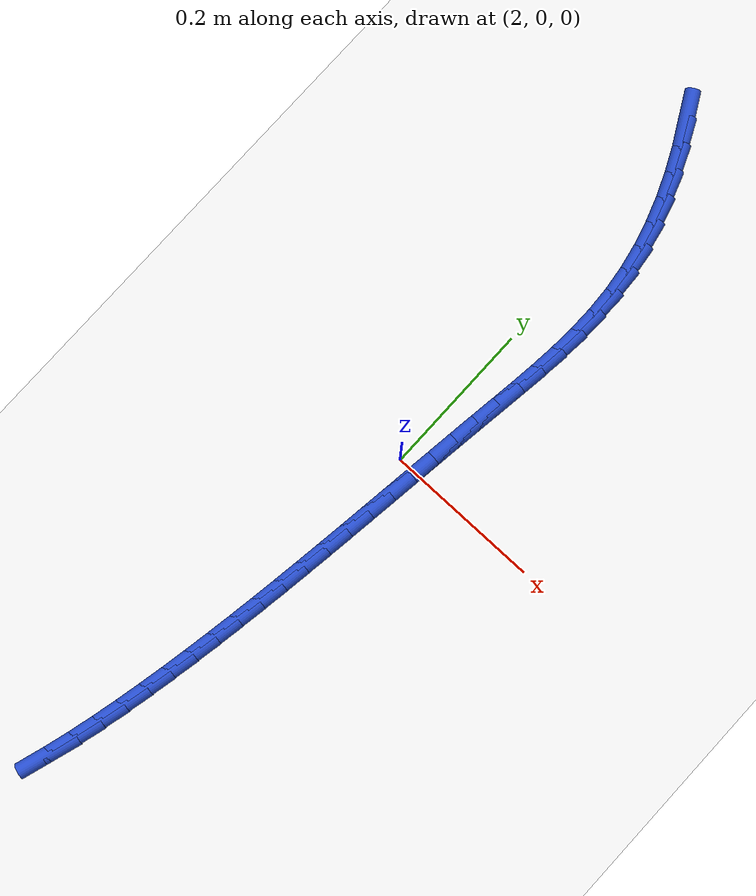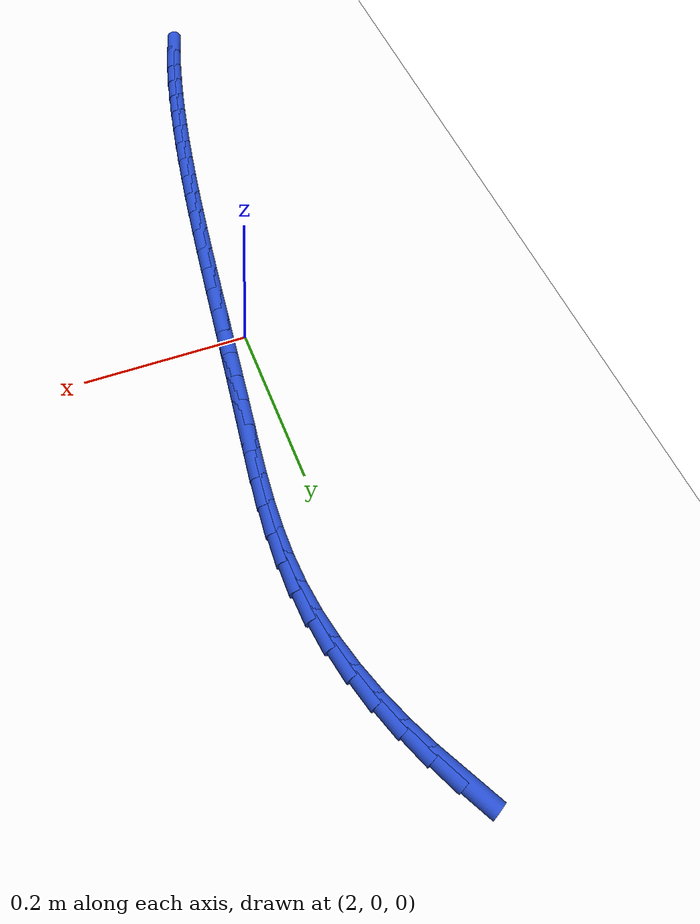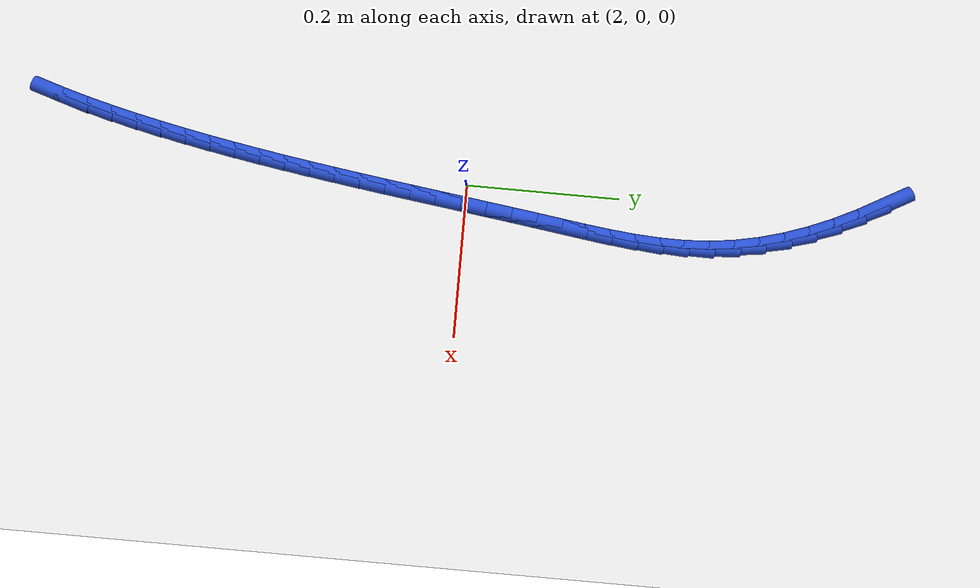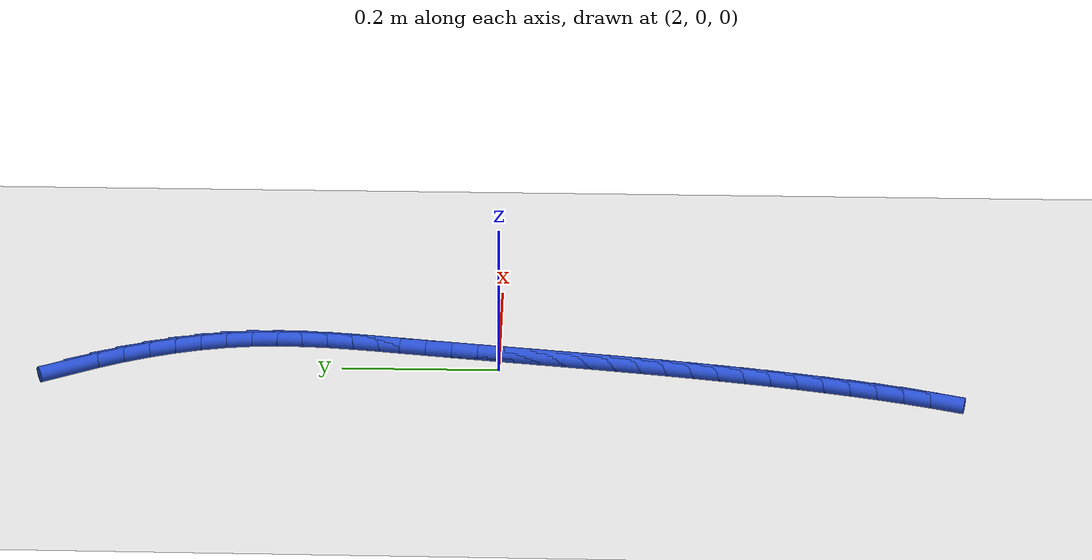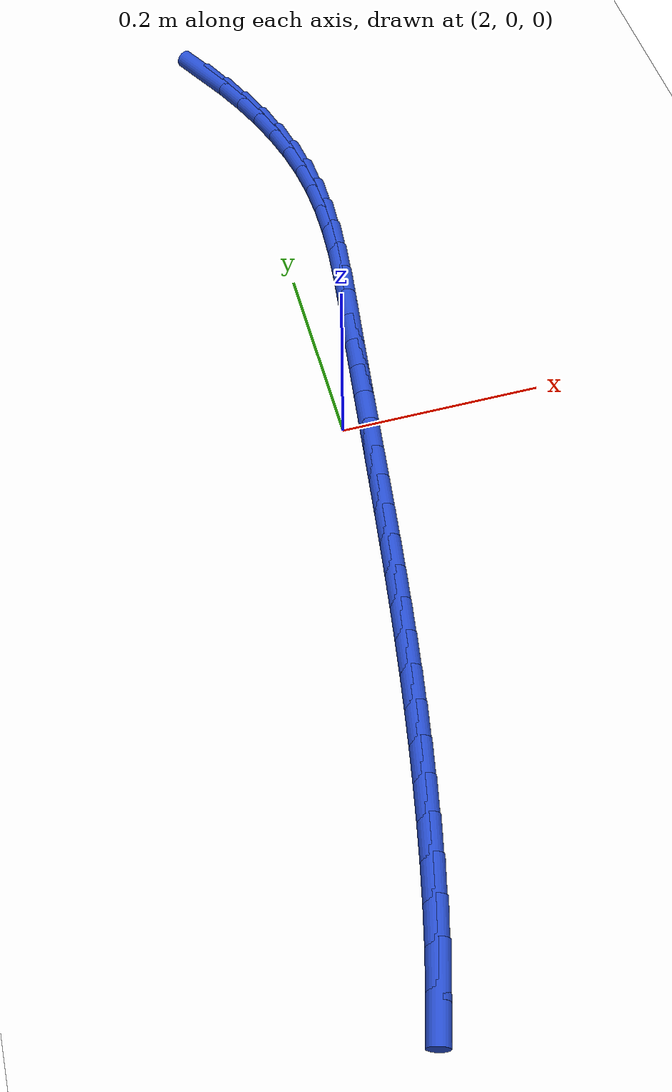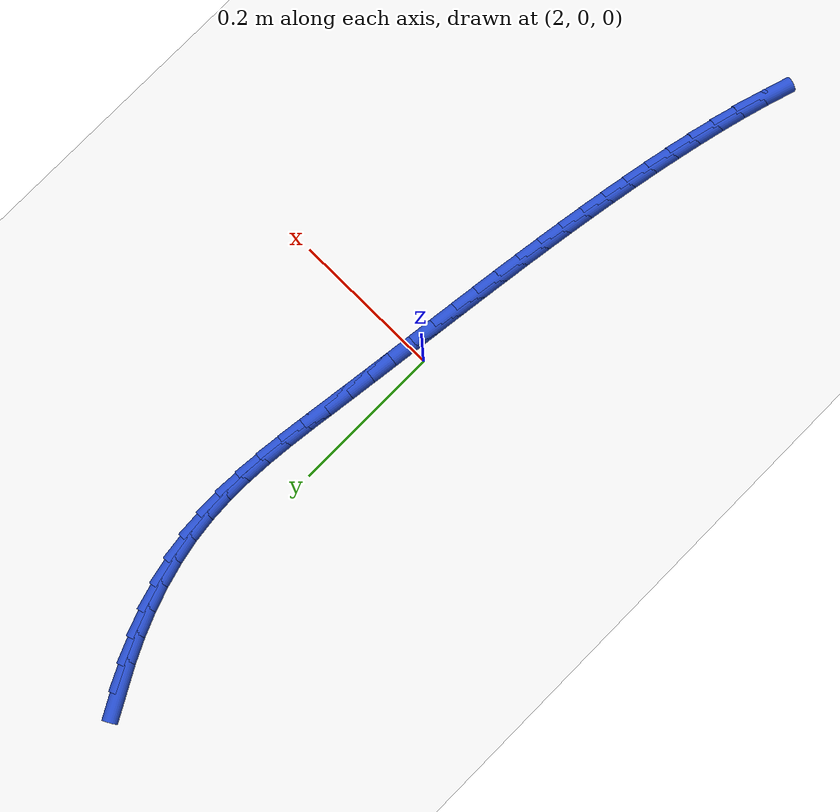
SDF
<sdf version="1.6">
 <world name="default">
  <model name="ground_plane">
   <static>1</static>
   <link name="link">
    <collision name="collision">
     <geometry><plane><normal>0 0 1</normal><size>100 100</size></plane></geometry>
     <surface><friction><ode><mu>100</mu><mu2>50</mu2></ode></friction></surface>
    </collision>
    <visual name="visual">
     <cast_shadows>0</cast_shadows>
     <geometry><plane><normal>0 0 1</normal><size>100 100</size></plane></geometry>
     <material>
      <script><uri>file://media/materials/scripts/gazebo.material</uri><name>Gazebo/WhiteGlow</name></script>
     </material>
    </visual>
   </link>
  </model>
  <model name="line">
   <link name="link_83">
    <pose>1.9785859503910033 0.5420167087360086 0.01 0 1.57 -1.0642399744052824</pose>
    <collision name="collision">
     <geometry><cylinder><radius>0.01</radius><length>0.08</length></cylinder></geometry>
    </collision>
    <visual name="visual">
     <material>
      <script><name>Gazebo/Blue</name><uri>file://media/materials/scripts/gazebo.material</uri></script>
     </material>
     <geometry><cylinder><radius>0.01</radius><length>0.08</length></cylinder></geometry>
    </visual>
   </link>
   <link name="link_84">
    <pose>1.995233003892592 0.5120137080595726 0.01 0 1.57 -1.1179018857047152</pose>
    <collision name="collision">
     <geometry><cylinder><radius>0.01</radius><length>0.08</length></cylinder></geometry>
    </collision>
    <visual name="visual">
     <material>
      <script><name>Gazebo/Blue</name><uri>file://media/materials/scripts/gazebo.material</uri></script>
     </material>
     <geometry><cylinder><radius>0.01</radius><length>0.08</length></cylinder></geometry>
    </visual>
   </link>
   <link name="link_85">
    <pose>2.0101528054058413 0.48135426604644205 0.01 0 1.57 -1.175007010932793</pose>
    <collision name="collision">
     <geometry><cylinder><radius>0.01</radius><length>0.08</length></cylinder></geometry>
    </collision>
    <visual name="visual">
     <material>
      <script><name>Gazebo/Blue</name><uri>file://media/materials/scripts/gazebo.material</uri></script>
     </material>
     <geometry><cylinder><radius>0.01</radius><length>0.08</length></cylinder></geometry>
    </visual>
   </link>
   <link name="link_86">
    <pose>2.023205420133483 0.450115856743895 0.01 0 1.57 -1.2359041561287163</pose>
    <collision name="collision">
     <geometry><cylinder><radius>0.01</radius><length>0.08</length></cylinder></geometry>
    </collision>
    <visual name="visual">
     <material>
      <script><name>Gazebo/Blue</name><uri>file://media/materials/scripts/gazebo.material</uri></script>
     </material>
     <geometry><cylinder><radius>0.01</radius><length>0.08</length></cylinder></geometry>
    </visual>
   </link>
   <link name="link_87">
    <pose>2.0342509132782483 0.4183759541992094 0.01 0 1.57 -1.3008884598681274</pose>
    <collision name="collision">
     <geometry><cylinder><radius>0.01</radius><length>0.08</length></cylinder></geometry>
    </collision>
    <visual name="visual">
     <material>
      <script><name>Gazebo/Blue</name><uri>file://media/materials/scripts/gazebo.material</uri></script>
     </material>
     <geometry><cylinder><radius>0.01</radius><length>0.08</length></cylinder></geometry>
    </visual>
   </link>
   <link name="link_88">
    <pose>2.043149350042869 0.38621203245966323 0.01 0 1.57 -1.370168638028922</pose>
    <collision name="collision">
     <geometry><cylinder><radius>0.01</radius><length>0.08</length></cylinder></geometry>
    </collision>
    <visual name="visual">
     <material>
      <script><name>Gazebo/Blue</name><uri>file://media/materials/scripts/gazebo.material</uri></script>
     </material>
     <geometry><cylinder><radius>0.01</radius><length>0.08</length></cylinder></geometry>
    </visual>
   </link>
   <link name="link_89">
    <pose>2.049760795630077 0.35370156557253424 0.01 0 1.57 -1.4438222022135072</pose>
    <collision name="collision">
     <geometry><cylinder><radius>0.01</radius><length>0.08</length></cylinder></geometry>
    </collision>
    <visual name="visual">
     <material>
      <script><name>Gazebo/Blue</name><uri>file://media/materials/scripts/gazebo.material</uri></script>
     </material>
     <geometry><cylinder><radius>0.01</radius><length>0.08</length></cylinder></geometry>
    </visual>
   </link>
   <link name="link_90">
    <pose>2.0539454634209346 0.32092201624762035 0.01 0 1.57 -1.5179107984316484</pose>
    <collision name="collision">
     <geometry><cylinder><radius>0.01</radius><length>0.08</length></cylinder></geometry>
    </collision>
    <visual name="visual">
     <material>
      <script><name>Gazebo/Blue</name><uri>file://media/materials/scripts/gazebo.material</uri></script>
     </material>
     <geometry><cylinder><radius>0.01</radius><length>0.08</length></cylinder></geometry>
    </visual>
   </link>
   <link name="link_91">
    <pose>2.055691305940977 0.28794107356572907 0.01 0 1.57 1.5604157926136992</pose>
    <collision name="collision">
     <geometry><cylinder><radius>0.01</radius><length>0.08</length></cylinder></geometry>
    </collision>
    <visual name="visual">
     <material>
      <script><name>Gazebo/Blue</name><uri>file://media/materials/scripts/gazebo.material</uri></script>
     </material>
     <geometry><cylinder><radius>0.01</radius><length>0.08</length></cylinder></geometry>
    </visual>
   </link>
   <link name="link_92">
    <pose>2.055347259151251 0.254798806897322 0.01 0 1.57 1.5101019974565983</pose>
    <collision name="collision">
     <geometry><cylinder><radius>0.01</radius><length>0.08</length></cylinder></geometry>
    </collision>
    <visual name="visual">
     <material>
      <script><name>Gazebo/Blue</name><uri>file://media/materials/scripts/gazebo.material</uri></script>
     </material>
     <geometry><cylinder><radius>0.01</radius><length>0.08</length></cylinder></geometry>
    </visual>
   </link>
   <link name="link_93">
    <pose>2.0533255749003207 0.22153044116211448 0.01 0 1.57 1.472577869253304</pose>
    <collision name="collision">
     <geometry><cylinder><radius>0.01</radius><length>0.08</length></cylinder></geometry>
    </collision>
    <visual name="visual">
     <material>
      <script><name>Gazebo/Blue</name><uri>file://media/materials/scripts/gazebo.material</uri></script>
     </material>
     <geometry><cylinder><radius>0.01</radius><length>0.08</length></cylinder></geometry>
    </visual>
   </link>
   <link name="link_94">
    <pose>2.0500385050367496 0.18817120127982165 0.01 0 1.57 1.4475216413646859</pose>
    <collision name="collision">
     <geometry><cylinder><radius>0.01</radius><length>0.08</length></cylinder></geometry>
    </collision>
    <visual name="visual">
     <material>
      <script><name>Gazebo/Blue</name><uri>file://media/materials/scripts/gazebo.material</uri></script>
     </material>
     <geometry><cylinder><radius>0.01</radius><length>0.08</length></cylinder></geometry>
    </visual>
   </link>
   <link name="link_95">
    <pose>2.0458983014091014 0.15475631217015906 0.01 0 1.57 1.434630779125607</pose>
    <collision name="collision">
     <geometry><cylinder><radius>0.01</radius><length>0.08</length></cylinder></geometry>
    </collision>
    <visual name="visual">
     <material>
      <script><name>Gazebo/Blue</name><uri>file://media/materials/scripts/gazebo.material</uri></script>
     </material>
     <geometry><cylinder><radius>0.01</radius><length>0.08</length></cylinder></geometry>
    </visual>
   </link>
   <link name="link_96">
    <pose>2.041317215865941 0.12132099875284219 0.01 0 1.57 1.4333094554021317</pose>
    <collision name="collision">
     <geometry><cylinder><radius>0.01</radius><length>0.08</length></cylinder></geometry>
    </collision>
    <visual name="visual">
     <material>
      <script><name>Gazebo/Blue</name><uri>file://media/materials/scripts/gazebo.material</uri></script>
     </material>
     <geometry><cylinder><radius>0.01</radius><length>0.08</length></cylinder></geometry>
    </visual>
   </link>
   <link name="link_97">
    <pose>2.0366930287660834 0.08789952496179074 0.01 0 1.57 1.436656766043924</pose>
    <collision name="collision">
     <geometry><cylinder><radius>0.01</radius><length>0.08</length></cylinder></geometry>
    </collision>
    <visual name="visual">
     <material>
      <script><name>Gazebo/Blue</name><uri>file://media/materials/scripts/gazebo.material</uri></script>
     </material>
     <geometry><cylinder><radius>0.01</radius><length>0.08</length></cylinder></geometry>
    </visual>
   </link>
   <link name="link_98">
    <pose>2.032187176579184 0.0545104602085117 0.01 0 1.57 1.4390718560105182</pose>
    <collision name="collision">
     <geometry><cylinder><radius>0.01</radius><length>0.08</length></cylinder></geometry>
    </collision>
    <visual name="visual">
     <material>
      <script><name>Gazebo/Blue</name><uri>file://media/materials/scripts/gazebo.material</uri></script>
     </material>
     <geometry><cylinder><radius>0.01</radius><length>0.08</length></cylinder></geometry>
    </visual>
   </link>
   <link name="link_99">
    <pose>2.0277684633332496 0.021159582060458773 0.01 0 1.57 1.4403866451803218</pose>
    <collision name="collision">
     <geometry><cylinder><radius>0.01</radius><length>0.08</length></cylinder></geometry>
    </collision>
    <visual name="visual">
     <material>
      <script><name>Gazebo/Blue</name><uri>file://media/materials/scripts/gazebo.material</uri></script>
     </material>
     <geometry><cylinder><radius>0.01</radius><length>0.08</length></cylinder></geometry>
    </visual>
   </link>
   <link name="link_100">
    <pose>2.0234000786290496 -0.012147704743484027 0.01 0 1.57 1.4405962882323877</pose>
    <collision name="collision">
     <geometry><cylinder><radius>0.01</radius><length>0.08</length></cylinder></geometry>
    </collision>
    <visual name="visual">
     <material>
      <script><name>Gazebo/Blue</name><uri>file://media/materials/scripts/gazebo.material</uri></script>
     </material>
     <geometry><cylinder><radius>0.01</radius><length>0.08</length></cylinder></geometry>
    </visual>
   </link>
   <link name="link_101">
    <pose>2.0190452120673523 -0.04540599546443274 0.01 0 1.57 1.4396958121084453</pose>
    <collision name="collision">
     <geometry><cylinder><radius>0.01</radius><length>0.08</length></cylinder></geometry>
    </collision>
    <visual name="visual">
     <material>
      <script><name>Gazebo/Blue</name><uri>file://media/materials/scripts/gazebo.material</uri></script>
     </material>
     <geometry><cylinder><radius>0.01</radius><length>0.08</length></cylinder></geometry>
    </visual>
   </link>
   <link name="link_102">
    <pose>2.014667053248928 -0.07860988536350325 0.01 0 1.57 1.4376801066121574</pose>
    <collision name="collision">
     <geometry><cylinder><radius>0.01</radius><length>0.08</length></cylinder></geometry>
    </collision>
    <visual name="visual">
     <material>
      <script><name>Gazebo/Blue</name><uri>file://media/materials/scripts/gazebo.material</uri></script>
     </material>
     <geometry><cylinder><radius>0.01</radius><length>0.08</length></cylinder></geometry>
    </visual>
   </link>
   <link name="link_103">
    <pose>2.010228791774543 -0.11175396970181171 0.01 0 1.57 1.43454395624777</pose>
    <collision name="collision">
     <geometry><cylinder><radius>0.01</radius><length>0.08</length></cylinder></geometry>
    </collision>
    <visual name="visual">
     <material>
      <script><name>Gazebo/Blue</name><uri>file://media/materials/scripts/gazebo.material</uri></script>
     </material>
     <geometry><cylinder><radius>0.01</radius><length>0.08</length></cylinder></geometry>
    </visual>
   </link>
   <link name="link_104">
    <pose>2.0056936172449666 -0.14483284374047403 0.01 0 1.57 1.430282114648413</pose>
    <collision name="collision">
     <geometry><cylinder><radius>0.01</radius><length>0.08</length></cylinder></geometry>
    </collision>
    <visual name="visual">
     <material>
      <script><name>Gazebo/Blue</name><uri>file://media/materials/scripts/gazebo.material</uri></script>
     </material>
     <geometry><cylinder><radius>0.01</radius><length>0.08</length></cylinder></geometry>
    </visual>
   </link>
   <link name="link_105">
    <pose>2.001024719260968 -0.17784110274060624 0.01 0 1.57 1.4248894229953257</pose>
    <collision name="collision">
     <geometry><cylinder><radius>0.01</radius><length>0.08</length></cylinder></geometry>
    </collision>
    <visual name="visual">
     <material>
      <script><name>Gazebo/Blue</name><uri>file://media/materials/scripts/gazebo.material</uri></script>
     </material>
     <geometry><cylinder><radius>0.01</radius><length>0.08</length></cylinder></geometry>
    </visual>
   </link>
   <link name="link_106">
    <pose>1.9961852874233155 -0.2107733419633243 0.01 0 1.57 1.4183609738035978</pose>
    <collision name="collision">
     <geometry><cylinder><radius>0.01</radius><length>0.08</length></cylinder></geometry>
    </collision>
    <visual name="visual">
     <material>
      <script><name>Gazebo/Blue</name><uri>file://media/materials/scripts/gazebo.material</uri></script>
     </material>
     <geometry><cylinder><radius>0.01</radius><length>0.08</length></cylinder></geometry>
    </visual>
   </link>
   <link name="link_107">
    <pose>1.9911385113327777 -0.2436241566697443 0.01 0 1.57 1.4106923213111124</pose>
    <collision name="collision">
     <geometry><cylinder><radius>0.01</radius><length>0.08</length></cylinder></geometry>
    </collision>
    <visual name="visual">
     <material>
      <script><name>Gazebo/Blue</name><uri>file://media/materials/scripts/gazebo.material</uri></script>
     </material>
     <geometry><cylinder><radius>0.01</radius><length>0.08</length></cylinder></geometry>
    </visual>
   </link>
   <link name="link_108">
    <pose>1.985847580590123 -0.27638814212098217 0.01 0 1.57 1.4018797394004352</pose>
    <collision name="collision">
     <geometry><cylinder><radius>0.01</radius><length>0.08</length></cylinder></geometry>
    </collision>
    <visual name="visual">
     <material>
      <script><name>Gazebo/Blue</name><uri>file://media/materials/scripts/gazebo.material</uri></script>
     </material>
     <geometry><cylinder><radius>0.01</radius><length>0.08</length></cylinder></geometry>
    </visual>
   </link>
   <link name="link_109">
    <pose>1.9802756847961203 -0.30905989357815394 0.01 0 1.57 1.3919205274603228</pose>
    <collision name="collision">
     <geometry><cylinder><radius>0.01</radius><length>0.08</length></cylinder></geometry>
    </collision>
    <visual name="visual">
     <material>
      <script><name>Gazebo/Blue</name><uri>file://media/materials/scripts/gazebo.material</uri></script>
     </material>
     <geometry><cylinder><radius>0.01</radius><length>0.08</length></cylinder></geometry>
    </visual>
   </link>
   <link name="link_110">
    <pose>1.9743860135515372 -0.3416340063023755 0.01 0 1.57 1.3808133638017208</pose>
    <collision name="collision">
     <geometry><cylinder><radius>0.01</radius><length>0.08</length></cylinder></geometry>
    </collision>
    <visual name="visual">
     <material>
      <script><name>Gazebo/Blue</name><uri>file://media/materials/scripts/gazebo.material</uri></script>
     </material>
     <geometry><cylinder><radius>0.01</radius><length>0.08</length></cylinder></geometry>
    </visual>
   </link>
   <link name="link_111">
    <pose>1.9681417564571433 -0.37410507555476297 0.01 0 1.57 1.368558705132932</pose>
    <collision name="collision">
     <geometry><cylinder><radius>0.01</radius><length>0.08</length></cylinder></geometry>
    </collision>
    <visual name="visual">
     <material>
      <script><name>Gazebo/Blue</name><uri>file://media/materials/scripts/gazebo.material</uri></script>
     </material>
     <geometry><cylinder><radius>0.01</radius><length>0.08</length></cylinder></geometry>
    </visual>
   </link>
   <link name="link_112">
    <pose>1.9615061031137073 -0.4064676965964324 0.01 0 1.57 1.3550601531785855</pose>
    <collision name="collision">
     <geometry><cylinder><radius>0.01</radius><length>0.08</length></cylinder></geometry>
    </collision>
    <visual name="visual">
     <material>
      <script><name>Gazebo/Blue</name><uri>file://media/materials/scripts/gazebo.material</uri></script>
     </material>
     <geometry><cylinder><radius>0.01</radius><length>0.08</length></cylinder></geometry>
    </visual>
   </link>
   <link name="link_113">
    <pose>1.9544386766358464 -0.4387174596252729 0.01 0 1.57 1.3388512918742252</pose>
    <collision name="collision">
     <geometry><cylinder><radius>0.01</radius><length>0.08</length></cylinder></geometry>
    </collision>
    <visual name="visual">
     <material>
      <script><name>Gazebo/Blue</name><uri>file://media/materials/scripts/gazebo.material</uri></script>
     </material>
     <geometry><cylinder><radius>0.01</radius><length>0.08</length></cylinder></geometry>
    </visual>
   </link>
   <link name="link_114">
    <pose>1.946845584639404 -0.47086488396981274 0.01 0 1.57 1.3188696554010078</pose>
    <collision name="collision">
     <geometry><cylinder><radius>0.01</radius><length>0.08</length></cylinder></geometry>
    </collision>
    <visual name="visual">
     <material>
      <script><name>Gazebo/Blue</name><uri>file://media/materials/scripts/gazebo.material</uri></script>
     </material>
     <geometry><cylinder><radius>0.01</radius><length>0.08</length></cylinder></geometry>
    </visual>
   </link>
   <link name="link_115">
    <pose>1.9385916613978142 -0.5029320029150014 0.01 0 1.57 1.2952277793351556</pose>
    <collision name="collision">
     <geometry><cylinder><radius>0.01</radius><length>0.08</length></cylinder></geometry>
    </collision>
    <visual name="visual">
     <material>
      <script><name>Gazebo/Blue</name><uri>file://media/materials/scripts/gazebo.material</uri></script>
     </material>
     <geometry><cylinder><radius>0.01</radius><length>0.08</length></cylinder></geometry>
    </visual>
   </link>
   <link name="link_116">
    <pose>1.9295406750333393 -0.5349411471682244 0.01 0 1.57 1.2681233908306095</pose>
    <collision name="collision">
     <geometry><cylinder><radius>0.01</radius><length>0.08</length></cylinder></geometry>
    </collision>
    <visual name="visual">
     <material>
      <script><name>Gazebo/Blue</name><uri>file://media/materials/scripts/gazebo.material</uri></script>
     </material>
     <geometry><cylinder><radius>0.01</radius><length>0.08</length></cylinder></geometry>
    </visual>
   </link>
  </model>
 </world>
</sdf>
